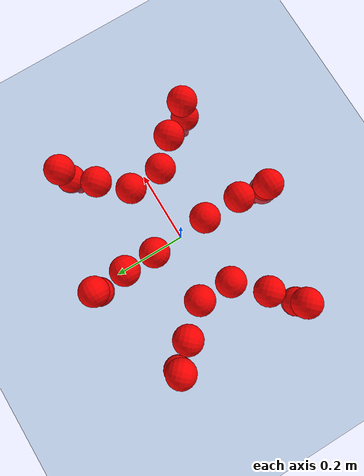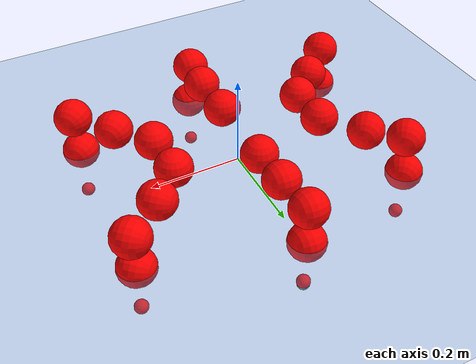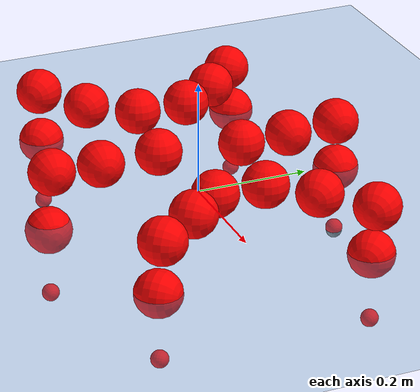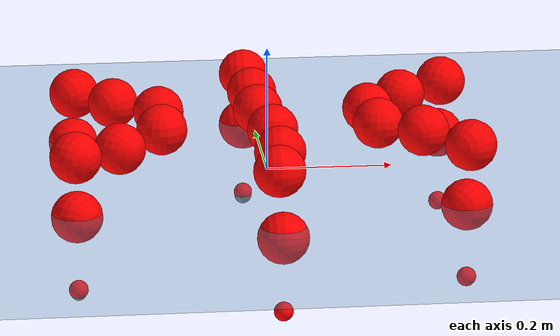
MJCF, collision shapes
<mujoco model="Golem">
  <compiler angle="radian" assetdir="assets" balanceinertia="true" inertiafromgeom="false"/>

  <option timestep="0.005" density="1.2" viscosity="2e-05"/>

  <size nkey="1"/>

  <visual>
    <quality shadowsize="8192"/>
    <map shadowclip="0.5"/>
  </visual>

  <default>
    <default class="/">
      <joint armature="0.01" damping="0.01" frictionloss="0.01"/>
      <geom contype="0" conaffinity="0" group="1" solref="-1000 -80"/>
      <site size="0.01 0.005 0.005" group="5"/>
      <general forcelimited="true" biastype="affine" gainprm="25" biasprm="0 -25 -0.5"/>
      <default class="visual">
        <geom type="mesh" group="2"/>
      </default>
      <default class="collision">
        <geom group="3"/>
      </default>
      <default class="foot">
        <geom size="0.01 0 0" condim="6" group="4" priority="1" solimp="0.015 1 0.01"/>
      </default>
      <default class="reward_collision_sphere">
        <geom group="5" rgba="1 0 0 1"/>
      </default>
    </default>
  </default>

  <asset>
    <texture type="skybox" colorspace="auto" name="//unnamed_texture_0" builtin="gradient" rgb1="0.95 0.95 0.95" rgb2="0.95 0.95 0.95" width="100" height="600"/>
    <texture type="2d" colorspace="auto" name="texplane" builtin="checker" rgb1="0.345 0.575 0.748" rgb2="0.345 0.575 0.748" markrgb="1 1 1" width="512" height="512"/>
    <material name="MatPlane" class="/" texture="texplane" texuniform="true" texrepeat="2 2" specular="0.9"/>
    <mesh name="body" class="/" file="body.stl" scale="0.001 0.001 0.001"/>
    <mesh name="coxa" class="/" file="coxa.stl" scale="0.001 0.001 0.001"/>
    <mesh name="femur" class="/" file="femur.stl" scale="0.001 0.001 0.001"/>
    <mesh name="tibia" class="/" file="tibia.stl" scale="0.001 0.001 0.001"/>
    <mesh name="tarsus" class="/" file="tarsus.stl" scale="0.001 0.001 0.001"/>
  </asset>

  <worldbody>
    <geom name="floor" class="/" size="100 100 0.125" type="plane" group="0" material="MatPlane"/>
    <light name="toplight_shadow" class="/" pos="0 0 5" dir="0.0990148 0.0990148 -0.990148" type="directional" ambient="0.04 0.04 0.04" diffuse="0.55 0.55 0.55" specular="0.12 0.12 0.12"/>
    <light name="toplight_fill" class="/" pos="0 0 5" dir="0.0990148 0.0990148 -0.990148" type="directional" castshadow="false" ambient="0.04 0.04 0.04" diffuse="0.3 0.3 0.3" specular="0.08 0.08 0.08"/>
    <body name="trunk" pos="0.00323802 0.0015597 0.0102673" quat="1 -6.70844e-05 0.000249307 -0.000755946">
      <inertial pos="-0.00358026 -0.00131663 -0.0092543" quat="0.999511 0.0195893 0.0128474 0.0207013" mass="3.52235" diaginertia="0.0194702 0.0036423 0.0146785"/>
      <joint name="//unnamed_joint_0" type="free"/>
      <geom name="//unnamed_geom_1" class="/" pos="0 0 0.0692466" quat="1 0 0 0" type="mesh" rgba="0.9 0.9 0.9 1" mesh="body"/>
      <site name="imu" class="/" pos="0.151718 -0.00656127 0.103744" size="0.010061"/>
      <camera name="track" class="/" pos="0 -1.65444 0" quat="0.707107 0.707107 0 0" mode="trackcom"/>
      <camera name="ego_camera" class="/" pos="0.144183 0 0.108198" quat="-0.5 -0.5 0.5 0.5"/>
      <body name="coxa_RR" pos="-0.197305 -0.0691229 0.0756626" quat="0.382841 0.000188481 -0.000323407 -0.923814">
        <inertial pos="-0.00125135 0.010031 0.00103323" quat="1 -7.94356e-06 -0.000118779 -3.33897e-05" mass="0.235809" diaginertia="0.0206314 0.00396544 0.0166722"/>
        <joint name="coxa_joint_RR" class="/" pos="0 0 0" axis="0.0578003 0.0107583 -0.99827" range="-3.1262 3.25224" armature="0.0122173" damping="0.0260896" frictionloss="0.0105725"/>
        <geom name="//unnamed_geom_2" class="/" type="mesh" rgba="0.2 0.2 0.2 1" mesh="coxa"/>
        <geom name="//unnamed_geom_3" class="reward_collision_sphere" size="0.0402439" pos="-0.0332729 0 0"/>
        <body name="femur_RR" pos="0.0660267 0.000212682 -0.00653089" quat="0.499856 -0.500014 0.500058 0.500073">
          <inertial pos="0.000202942 -0.00422883 0.00415833" quat="0.999977 0.00238105 0.00393848 -0.00493295" mass="0.195892" diaginertia="0.0165369 0.00387895 0.0145693"/>
          <joint name="femur_joint_RR" class="/" pos="0 0 0" axis="0.00115417 -0.00533261 -0.999985" stiffness="0.0154917" range="-3.15127 3.32106" armature="0.0128549" damping="0.0186804" frictionloss="0.00699813"/>
          <geom name="//unnamed_geom_4" class="/" type="mesh" rgba="0.9 0.9 0.9 1" mesh="femur"/>
          <geom name="//unnamed_geom_5" class="reward_collision_sphere" size="0.0402439"/>
          <body name="tibia_RR" pos="-0.00878277 -0.0953035 -0.00586219" quat="-0.000192627 0.999998 6.66893e-05 0.00182665">
            <inertial pos="0.00808544 0.00491581 0.000124722" quat="0.999448 -0.00304676 -0.0272892 0.0186953" mass="0.203145" diaginertia="0.0181673 0.00378823 0.0146022"/>
            <joint name="tibia_joint_RR" class="/" pos="0 0 0" axis="0.012477 0.0150988 0.999808" range="-2.9437 3.18781" armature="0.0129872" damping="0.0295645" frictionloss="0.0107067"/>
            <geom name="//unnamed_geom_6" class="/" type="mesh" rgba="0.2 0.2 0.2 1" mesh="tibia"/>
            <geom name="//unnamed_geom_7" class="reward_collision_sphere" size="0.0402439"/>
            <body name="tarsus_RR" pos="0.0961914 -0.0011384 0.000561173" quat="1 -0.000325138 1.16996e-05 -2.35107e-05">
              <inertial pos="0.0688083 -0.00884236 0.00615535" quat="0.506605 0.501779 0.499685 0.491818" mass="0.20884" diaginertia="0.0165105 0.00370753 0.0149805"/>
              <joint name="tarsus_joint_RR" class="/" pos="0 0 0" axis="0.00969635 -0.000212671 0.999953" stiffness="0.0500478" range="-3.11926 3.13494" armature="0.00649421" damping="0.0128502" frictionloss="0.00651859"/>
              <geom name="//unnamed_geom_8" class="/" type="mesh" rgba="0.9 0.9 0.9 1" mesh="tarsus"/>
              <geom name="foot_1" class="foot" size="0.0122648" pos="0.124219 0 0" quat="0 -0.707107 0 0.707107"/>
              <geom name="//unnamed_geom_10" class="reward_collision_sphere" size="0.0402439"/>
              <geom name="//unnamed_geom_11" class="reward_collision_sphere" size="0.0150915" pos="0.119228 0 0"/>
              <site name="foot_1" class="foot" pos="0.124219 0 0" quat="0 -0.707107 0 0.707107" size="0.010061"/>
            </body>
          </body>
        </body>
      </body>
      <body name="coxa_RM" pos="-0.00212489 -0.107599 0.079452" quat="0.704294 0.00164826 -0.00324051 -0.709899">
        <inertial pos="0.00833238 -1.46133e-05 0.00291566" quat="0.999991 0.000753156 -0.00160842 0.00377131" mass="0.222815" diaginertia="0.0191905 0.00427973 0.0153633"/>
        <joint name="coxa_joint_RM" class="/" pos="0 0 0" axis="-0.00292475 -0.00126607 -0.999995" stiffness="0.0150922" range="-2.92118 3.1157" armature="0.0106264" damping="0" frictionloss="0.00995305"/>
        <geom name="//unnamed_geom_12" class="/" type="mesh" rgba="0.2 0.2 0.2 1" mesh="coxa"/>
        <geom name="//unnamed_geom_13" class="reward_collision_sphere" size="0.0402439" pos="-0.0332729 0 0"/>
        <body name="femur_RM" pos="0.0703227 0.00167613 -0.00252123" quat="0.503261 -0.500314 0.499092 0.497313">
          <inertial pos="-0.00323561 0.00254383 -0.00238473" quat="0.999113 0.0292962 -0.014043 -0.0268057" mass="0.185494" diaginertia="0.0153426 0.00382744 0.0132346"/>
          <joint name="femur_joint_RM" class="/" pos="0 0 0" axis="0.00760733 -0.00580805 -0.999954" stiffness="0.0508902" range="-3.17495 3.11405" armature="0.0104158" damping="0.025816" frictionloss="0.01128"/>
          <geom name="//unnamed_geom_14" class="/" type="mesh" rgba="0.9 0.9 0.9 1" mesh="femur"/>
          <geom name="//unnamed_geom_15" class="reward_collision_sphere" size="0.0402439"/>
          <body name="tibia_RM" pos="0.00432696 -0.0833468 -0.00845407" quat="9.37296e-05 1 -0.000289168 -0.0001958">
            <inertial pos="0.00132916 -0.0116326 0.00167693" quat="0.999999 0.000258595 0.000969955 0.000450794" mass="0.178496" diaginertia="0.0149933 0.00340885 0.012261"/>
            <joint name="tibia_joint_RM" class="/" pos="0 0 0" axis="0.0170236 -0.0158985 0.999729" range="-3.25837 3.3756" armature="0.00788203" damping="0.0533614" frictionloss="0.0108905"/>
            <geom name="//unnamed_geom_16" class="/" type="mesh" rgba="0.2 0.2 0.2 1" mesh="tibia"/>
            <geom name="//unnamed_geom_17" class="reward_collision_sphere" size="0.0402439"/>
            <body name="tarsus_RM" pos="0.104123 0.00894094 -0.00417645" quat="0.999995 0.00116834 -0.00167333 -0.00241893">
              <inertial pos="0.0641085 -0.0104931 -0.00198604" quat="0.500705 0.495582 0.499621 0.504055" mass="0.249561" diaginertia="0.0177826 0.00417008 0.0166899"/>
              <joint name="tarsus_joint_RM" class="/" pos="0 0 0" axis="0.0193037 0.0107706 0.999756" range="-3.17521 3.13695" armature="0.0076916" damping="0" frictionloss="0.00985904"/>
              <geom name="//unnamed_geom_18" class="/" type="mesh" rgba="0.9 0.9 0.9 1" mesh="tarsus"/>
              <geom name="foot_2" class="foot" size="0.00921386" pos="0.124219 0 0" quat="0 -0.707107 0 0.707107"/>
              <geom name="//unnamed_geom_20" class="reward_collision_sphere" size="0.0402439"/>
              <geom name="//unnamed_geom_21" class="reward_collision_sphere" size="0.0150915" pos="0.119228 0 0"/>
              <site name="foot_2" class="foot" pos="0.124219 0 0" quat="0 -0.707107 0 0.707107" size="0.010061"/>
            </body>
          </body>
        </body>
      </body>
      <body name="coxa_RF" pos="0.192425 -0.0668463 0.0752591" quat="0.924506 -0.000598075 -0.00192105 -0.381163">
        <inertial pos="0.0089145 -0.000400377 -0.00751181" quat="0.99975 0.0182582 0.0128755 0.000931235" mass="0.170667" diaginertia="0.0152668 0.00379404 0.0135353"/>
        <joint name="coxa_joint_RF" class="/" pos="0 0 0" axis="-0.0197438 -0.0115158 -0.999739" stiffness="0.00941303" range="-3.04505 3.14676" armature="0.014023" damping="0" frictionloss="0.00749282"/>
        <geom name="//unnamed_geom_22" class="/" type="mesh" rgba="0.2 0.2 0.2 1" mesh="coxa"/>
        <geom name="//unnamed_geom_23" class="reward_collision_sphere" size="0.0402439" pos="-0.0332729 0 0"/>
        <body name="femur_RF" pos="0.0561929 -0.00102736 0.00574228" quat="0.503588 -0.498311 0.498494 0.499588">
          <inertial pos="-0.00055467 0.00317185 0.000828393" quat="0.999988 0.0013748 -0.00361357 0.00285314" mass="0.255543" diaginertia="0.0168086 0.00449786 0.0178885"/>
          <joint name="femur_joint_RF" class="/" pos="0 0 0" axis="0.00115345 0.0069381 -0.999975" stiffness="0.0535702" range="-3.18859 3.33234" armature="0.0153699" damping="0.0113173" frictionloss="0.0155593"/>
          <geom name="//unnamed_geom_24" class="/" type="mesh" rgba="0.9 0.9 0.9 1" mesh="femur"/>
          <geom name="//unnamed_geom_25" class="reward_collision_sphere" size="0.0402439"/>
          <body name="tibia_RF" pos="0.00161517 -0.099462 -0.0103966" quat="0.000242787 1 0.000443868 0.00022524">
            <inertial pos="0.00910922 0.00055332 8.24106e-05" quat="0.999966 -0.00779549 0.00188184 0.00210618" mass="0.220769" diaginertia="0.0194799 0.00414771 0.0157126"/>
            <joint name="tibia_joint_RF" class="/" pos="0 0 0" axis="-0.016121 -0.0122167 0.999795" stiffness="0.01735" range="-3.24309 3.16507" armature="0.0102131" damping="0.049608" frictionloss="0.00772026"/>
            <geom name="//unnamed_geom_26" class="/" type="mesh" rgba="0.2 0.2 0.2 1" mesh="tibia"/>
            <geom name="//unnamed_geom_27" class="reward_collision_sphere" size="0.0402439"/>
            <body name="tarsus_RF" pos="0.0946945 -0.000355876 0.00895524" quat="0.999995 -0.00112933 0.00286537 -0.000371764">
              <inertial pos="0.0749637 0.00462744 -0.00187683" quat="0.469425 0.511434 0.540723 0.475072" mass="0.212732" diaginertia="0.0176722 0.00374781 0.017534"/>
              <joint name="tarsus_joint_RF" class="/" pos="0 0 0" axis="-0.0208663 0.00443812 0.999772" stiffness="0.00417982" range="-3.12663 3.15258" armature="0.0148687" damping="0.0145818" frictionloss="0.0141633"/>
              <geom name="//unnamed_geom_28" class="/" type="mesh" rgba="0.9 0.9 0.9 1" mesh="tarsus"/>
              <geom name="foot_3" class="foot" size="0.0101206" pos="0.124219 0 0" quat="0 -0.707107 0 0.707107"/>
              <geom name="//unnamed_geom_30" class="reward_collision_sphere" size="0.0402439"/>
              <geom name="//unnamed_geom_31" class="reward_collision_sphere" size="0.0150915" pos="0.119228 0 0"/>
              <site name="foot_3" class="foot" pos="0.124219 0 0" quat="0 -0.707107 0 0.707107" size="0.010061"/>
            </body>
          </body>
        </body>
      </body>
      <body name="coxa_LR" pos="-0.196387 0.0686767 0.076891" quat="0.382484 0.000217177 -0.000161932 0.923962">
        <inertial pos="-0.00229333 0.00132867 -0.00151093" quat="0.998751 0.029757 0.0172352 0.0362394" mass="0.194173" diaginertia="0.0167625 0.00329932 0.0146211"/>
        <joint name="coxa_joint_LR" class="/" pos="0 0 0" axis="0.0144173 -0.00472299 -0.999885" range="-3.17308 3.07178" armature="0.00608778" damping="0.0168614" frictionloss="0.00902771"/>
        <geom name="//unnamed_geom_32" class="/" type="mesh" rgba="0.2 0.2 0.2 1" mesh="coxa"/>
        <geom name="//unnamed_geom_33" class="reward_collision_sphere" size="0.0402439" pos="-0.0332729 0 0"/>
        <body name="femur_LR" pos="0.0685591 -0.00522908 -0.00745952" quat="0.500038 -0.501454 0.501055 0.497443">
          <inertial pos="0.0080271 0.00969808 -0.00966718" quat="0.999997 0.0010122 -0.00199379 -0.000114679" mass="0.170491" diaginertia="0.0151599 0.00327725 0.0143907"/>
          <joint name="femur_joint_LR" class="/" pos="0 0 0" axis="0.0470051 -0.0215319 0.998663" stiffness="0.0196206" range="-3.01833 3.27474" armature="0.00414419" damping="0.0226925" frictionloss="0.0140598"/>
          <geom name="//unnamed_geom_34" class="/" type="mesh" rgba="0.9 0.9 0.9 1" mesh="femur"/>
          <geom name="//unnamed_geom_35" class="reward_collision_sphere" size="0.0402439"/>
          <body name="tibia_LR" pos="-3.16446e-05 -0.0826486 0.00250817" quat="0.000918277 1 0.000267049 -2.68616e-05">
            <inertial pos="0.000301361 0.00965146 0.000423924" quat="0.999809 0.000722003 -0.0193055 -0.00292555" mass="0.238292" diaginertia="0.0191909 0.0039507 0.0180336"/>
            <joint name="tibia_joint_LR" class="/" pos="0 0 0" axis="0.0191801 0.0409957 -0.998975" stiffness="0.0444287" range="-3.11731 3.31625" armature="0.00989227" damping="0.0127619" frictionloss="0.00704548"/>
            <geom name="//unnamed_geom_36" class="/" type="mesh" rgba="0.2 0.2 0.2 1" mesh="tibia"/>
            <geom name="//unnamed_geom_37" class="reward_collision_sphere" size="0.0402439"/>
            <body name="tarsus_LR" pos="0.0866951 0.00866654 0.00512738" quat="0.999996 0.00271411 -1.72073e-05 -0.000901883">
              <inertial pos="0.0692081 -0.00304044 0.00700701" quat="0.50392 0.494075 0.497825 0.504109" mass="0.220428" diaginertia="0.0174018 0.00369324 0.014944"/>
              <joint name="tarsus_joint_LR" class="/" pos="0 0 0" axis="0.0135539 0.00791726 -0.999877" stiffness="0.0171653" range="-3.00121 3.12051" armature="0.0140665" damping="0.0204046" frictionloss="0.00918992"/>
              <geom name="//unnamed_geom_38" class="/" type="mesh" rgba="0.9 0.9 0.9 1" mesh="tarsus"/>
              <geom name="foot_4" class="foot" size="0.0100428" pos="0.124219 0 0" quat="0.707107 0 -0.707107 0"/>
              <geom name="//unnamed_geom_40" class="reward_collision_sphere" size="0.0402439"/>
              <geom name="//unnamed_geom_41" class="reward_collision_sphere" size="0.0150915" pos="0.119228 0 0"/>
              <site name="foot_4" class="foot" pos="0.124219 0 0" quat="0.707107 0 -0.707107 0" size="0.010061"/>
            </body>
          </body>
        </body>
      </body>
      <body name="coxa_LM" pos="-0.00997154 0.114138 0.0643688" quat="0.707478 0.000349937 -0.000451606 0.706735">
        <inertial pos="-0.00523862 -0.00194024 -0.00238768" quat="0.999798 0.00987424 0.00478733 -0.0168205" mass="0.219676" diaginertia="0.0148842 0.00395087 0.0143514"/>
        <joint name="coxa_joint_LM" class="/" pos="0 0 0" axis="0.0423934 0.0160173 -0.998973" stiffness="0.0139318" range="-3.2037 2.92228" armature="0.00995878" damping="0.0215531" frictionloss="0.00926016"/>
        <geom name="//unnamed_geom_42" class="/" type="mesh" rgba="0.2 0.2 0.2 1" mesh="coxa"/>
        <geom name="//unnamed_geom_43" class="reward_collision_sphere" size="0.0402439" pos="-0.0332729 0 0"/>
        <body name="femur_LM" pos="0.0550102 0.00136798 0.00186229" quat="0.502843 -0.500058 0.500105 0.496977">
          <inertial pos="-0.00651521 -0.000498003 0.00591238" quat="0.999962 -0.00195393 -0.00513262 -0.00675074" mass="0.162534" diaginertia="0.0153124 0.00351079 0.0122655"/>
          <joint name="femur_joint_LM" class="/" pos="0 0 0" axis="-0.0189291 0.0293855 0.999389" range="-2.95152 3.32508" armature="0.00922359" damping="0" frictionloss="0.00705082"/>
          <geom name="//unnamed_geom_44" class="/" type="mesh" rgba="0.9 0.9 0.9 1" mesh="femur"/>
          <geom name="//unnamed_geom_45" class="reward_collision_sphere" size="0.0402439"/>
          <body name="tibia_LM" pos="-0.00257109 -0.0927473 0.00586964" quat="-0.0006049 1 0.000341827 0.000148239">
            <inertial pos="-0.00591287 -0.00426613 0.00184674" quat="0.999935 -0.00459889 0.00464362 0.00931836" mass="0.184813" diaginertia="0.0154476 0.004134 0.0130946"/>
            <joint name="tibia_joint_LM" class="/" pos="0 0 0" axis="0.02792 0.0093674 -0.999566" stiffness="0.0587907" range="-3.17246 3.14359" armature="0.0146485" damping="0.0354922" frictionloss="0.00917694"/>
            <geom name="//unnamed_geom_46" class="/" type="mesh" rgba="0.2 0.2 0.2 1" mesh="tibia"/>
            <geom name="//unnamed_geom_47" class="reward_collision_sphere" size="0.0402439"/>
            <body name="tarsus_LM" pos="0.0895752 0.00204855 -0.000318753" quat="1 -1.78315e-05 -1.23422e-05 2.47126e-06">
              <inertial pos="0.0655039 -0.000723358 -0.00748845" quat="0.489408 0.491799 0.510391 0.50805" mass="0.213127" diaginertia="0.0191048 0.00352905 0.0146299"/>
              <joint name="tarsus_joint_LM" class="/" pos="0 0 0" axis="0.0103706 -0.0027348 -0.999942" stiffness="0.0311168" range="-3.10529 3.18005" armature="0.00975338" damping="0" frictionloss="0.010316"/>
              <geom name="//unnamed_geom_48" class="/" type="mesh" rgba="0.9 0.9 0.9 1" mesh="tarsus"/>
              <geom name="foot_5" class="foot" size="0.0143718" pos="0.124219 0 0" quat="0.707107 0 -0.707107 0"/>
              <geom name="//unnamed_geom_50" class="reward_collision_sphere" size="0.0402439"/>
              <geom name="//unnamed_geom_51" class="reward_collision_sphere" size="0.0150915" pos="0.119228 0 0"/>
              <site name="foot_5" class="foot" pos="0.124219 0 0" quat="0.707107 0 -0.707107 0" size="0.010061"/>
            </body>
          </body>
        </body>
      </body>
      <body name="coxa_LF" pos="0.187178 0.0714867 0.071947" quat="0.924792 -0.00144495 -0.00388178 0.380451">
        <inertial pos="-0.000944397 5.47196e-05 -0.00740618" quat="0.999986 0.00023779 0.000112859 -0.00523493" mass="0.213204" diaginertia="0.0162052 0.00460406 0.0152657"/>
        <joint name="coxa_joint_LF" class="/" pos="0 0 0" axis="-0.0327251 -0.0227553 -0.999205" stiffness="0.0119147" range="-3.13732 3.15987" armature="0.0105165" damping="0.00682779" frictionloss="0.0139306"/>
        <geom name="//unnamed_geom_52" class="/" type="mesh" rgba="0.2 0.2 0.2 1" mesh="coxa"/>
        <geom name="//unnamed_geom_53" class="reward_collision_sphere" size="0.0402439" pos="-0.0332729 0 0"/>
        <body name="femur_LF" pos="0.0589827 0.0051208 -0.00055813" quat="0.499392 -0.500213 0.499322 0.50107">
          <inertial pos="0.00115873 0.00126618 -0.00946238" quat="0.999555 0.0155493 0.00919293 -0.0237312" mass="0.173735" diaginertia="0.0183032 0.00392139 0.0149418"/>
          <joint name="femur_joint_LF" class="/" pos="0 0 0" axis="-0.0237077 0.0252413 0.9994" stiffness="0.00264069" range="-3.12063 3.13969" armature="0.00930491" damping="0.016709" frictionloss="0.0057588"/>
          <geom name="//unnamed_geom_54" class="/" type="mesh" rgba="0.9 0.9 0.9 1" mesh="femur"/>
          <geom name="//unnamed_geom_55" class="reward_collision_sphere" size="0.0402439"/>
          <body name="tibia_LF" pos="0.000513832 -0.101144 -0.00776906" quat="0.00317229 0.999987 -0.00292415 -0.00264319">
            <inertial pos="0.000380307 -0.00176303 0.00716746" quat="0.998789 -0.0476241 -0.00907816 -0.0083721" mass="0.184244" diaginertia="0.0147461 0.0037997 0.0146323"/>
            <joint name="tibia_joint_LF" class="/" pos="0 0 0" axis="0.000829913 0.000163776 -1" stiffness="0.0380478" range="-3.37161 3.0736" armature="0.00969652" damping="0" frictionloss="0.0102127"/>
            <geom name="//unnamed_geom_56" class="/" type="mesh" rgba="0.2 0.2 0.2 1" mesh="tibia"/>
            <geom name="//unnamed_geom_57" class="reward_collision_sphere" size="0.0402439"/>
            <body name="tarsus_LF" pos="0.0876189 -0.00776341 6.0262e-05" quat="0.999998 -0.00128617 -0.00129913 0.000627771">
              <inertial pos="0.0770376 0.00199481 0.00161601" quat="0.499228 0.499926 0.500333 0.500513" mass="0.232864" diaginertia="0.0190489 0.00444288 0.0139898"/>
              <joint name="tarsus_joint_LF" class="/" pos="0 0 0" axis="-0.0409593 -0.0122607 -0.999086" stiffness="0.0362857" range="-3.16324 3.29195" armature="0.00525587" damping="0" frictionloss="0.004435"/>
              <geom name="//unnamed_geom_58" class="/" type="mesh" rgba="0.9 0.9 0.9 1" mesh="tarsus"/>
              <geom name="foot_6" class="foot" size="0.00974839" pos="0.124219 0 0" quat="0.707107 0 -0.707107 0"/>
              <geom name="//unnamed_geom_60" class="reward_collision_sphere" size="0.0402439"/>
              <geom name="//unnamed_geom_61" class="reward_collision_sphere" size="0.0150915" pos="0.119228 0 0"/>
              <site name="foot_6" class="foot" pos="0.124219 0 0" quat="0.707107 0 -0.707107 0" size="0.010061"/>
            </body>
          </body>
        </body>
      </body>
    </body>
  </worldbody>

  <contact>
    <pair class="/" geom1="floor" geom2="foot_1" name="//unnamed_contact_0"/>
    <pair class="/" geom1="floor" geom2="foot_2" name="//unnamed_contact_1"/>
    <pair class="/" geom1="floor" geom2="foot_3" name="//unnamed_contact_2"/>
    <pair class="/" geom1="floor" geom2="foot_4" name="//unnamed_contact_3"/>
    <pair class="/" geom1="floor" geom2="foot_5" name="//unnamed_contact_4"/>
    <pair class="/" geom1="floor" geom2="foot_6" name="//unnamed_contact_5"/>
  </contact>

  <actuator>
    <general name="coxa_joint_RR" class="/" joint="coxa_joint_RR" forcerange="-5.91859 5.91859" gainprm="24.5722" biasprm="0 -24.5722 -0.505347"/>
    <general name="femur_joint_RR" class="/" joint="femur_joint_RR" forcerange="-5.53993 5.53993" gainprm="24.5722" biasprm="0 -24.5722 -0.505347"/>
    <general name="tibia_joint_RR" class="/" joint="tibia_joint_RR" forcerange="-9.25483 9.25483" gainprm="24.5722" biasprm="0 -24.5722 -0.505347"/>
    <general name="tarsus_joint_RR" class="/" joint="tarsus_joint_RR" forcerange="-9.45778 9.45778" gainprm="24.5722" biasprm="0 -24.5722 -0.505347"/>
    <general name="coxa_joint_RM" class="/" joint="coxa_joint_RM" forcerange="-9.93464 9.93464" gainprm="24.5722" biasprm="0 -24.5722 -0.505347"/>
    <general name="femur_joint_RM" class="/" joint="femur_joint_RM" forcerange="-7.4102 7.4102" gainprm="24.5722" biasprm="0 -24.5722 -0.505347"/>
    <general name="tibia_joint_RM" class="/" joint="tibia_joint_RM" forcerange="-6.90157 6.90157" gainprm="24.5722" biasprm="0 -24.5722 -0.505347"/>
    <general name="tarsus_joint_RM" class="/" joint="tarsus_joint_RM" forcerange="-6.87604 6.87604" gainprm="24.5722" biasprm="0 -24.5722 -0.505347"/>
    <general name="coxa_joint_RF" class="/" joint="coxa_joint_RF" forcerange="-7.69746 7.69746" gainprm="24.5722" biasprm="0 -24.5722 -0.505347"/>
    <general name="femur_joint_RF" class="/" joint="femur_joint_RF" forcerange="-4.19124 4.19124" gainprm="24.5722" biasprm="0 -24.5722 -0.505347"/>
    <general name="tibia_joint_RF" class="/" joint="tibia_joint_RF" forcerange="-4.66684 4.66684" gainprm="24.5722" biasprm="0 -24.5722 -0.505347"/>
    <general name="tarsus_joint_RF" class="/" joint="tarsus_joint_RF" forcerange="-4.88249 4.88249" gainprm="24.5722" biasprm="0 -24.5722 -0.505347"/>
    <general name="coxa_joint_LR" class="/" joint="coxa_joint_LR" forcerange="-7.4251 7.4251" gainprm="24.5722" biasprm="0 -24.5722 -0.505347"/>
    <general name="femur_joint_LR" class="/" joint="femur_joint_LR" forcerange="-7.80034 7.80034" gainprm="24.5722" biasprm="0 -24.5722 -0.505347"/>
    <general name="tibia_joint_LR" class="/" joint="tibia_joint_LR" forcerange="-4.30546 4.30546" gainprm="24.5722" biasprm="0 -24.5722 -0.505347"/>
    <general name="tarsus_joint_LR" class="/" joint="tarsus_joint_LR" forcerange="-4.6686 4.6686" gainprm="24.5722" biasprm="0 -24.5722 -0.505347"/>
    <general name="coxa_joint_LM" class="/" joint="coxa_joint_LM" forcerange="-7.80356 7.80356" gainprm="24.5722" biasprm="0 -24.5722 -0.505347"/>
    <general name="femur_joint_LM" class="/" joint="femur_joint_LM" forcerange="-7.03607 7.03607" gainprm="24.5722" biasprm="0 -24.5722 -0.505347"/>
    <general name="tibia_joint_LM" class="/" joint="tibia_joint_LM" forcerange="-7.24335 7.24335" gainprm="24.5722" biasprm="0 -24.5722 -0.505347"/>
    <general name="tarsus_joint_LM" class="/" joint="tarsus_joint_LM" forcerange="-8.03912 8.03912" gainprm="24.5722" biasprm="0 -24.5722 -0.505347"/>
    <general name="coxa_joint_LF" class="/" joint="coxa_joint_LF" forcerange="-7.12826 7.12826" gainprm="24.5722" biasprm="0 -24.5722 -0.505347"/>
    <general name="femur_joint_LF" class="/" joint="femur_joint_LF" forcerange="-4.96476 4.96476" gainprm="24.5722" biasprm="0 -24.5722 -0.505347"/>
    <general name="tibia_joint_LF" class="/" joint="tibia_joint_LF" forcerange="-5.16724 5.16724" gainprm="24.5722" biasprm="0 -24.5722 -0.505347"/>
    <general name="tarsus_joint_LF" class="/" joint="tarsus_joint_LF" forcerange="-7.67273 7.67273" gainprm="24.5722" biasprm="0 -24.5722 -0.505347"/>
  </actuator>

  <sensor>
    <gyro site="imu" name="imu_angular_velocity"/>
    <velocimeter site="imu" name="imu_linear_velocity"/>
    <framelinvel objtype="site" objname="foot_1" name="foot_1_global_linear_velocity"/>
    <framelinvel objtype="site" objname="foot_2" name="foot_2_global_linear_velocity"/>
    <framelinvel objtype="site" objname="foot_3" name="foot_3_global_linear_velocity"/>
    <framelinvel objtype="site" objname="foot_4" name="foot_4_global_linear_velocity"/>
    <framelinvel objtype="site" objname="foot_5" name="foot_5_global_linear_velocity"/>
    <framelinvel objtype="site" objname="foot_6" name="foot_6_global_linear_velocity"/>
  </sensor>

  <keyframe>
    <key name="home" qpos="0 0 0.1457 1 0 0 0 0 0 0 0 0 0 0 0 0 0 0 0 0 0 0 0 0 0 0 0 0 0 0 0"/>
  </keyframe>
</mujoco>
